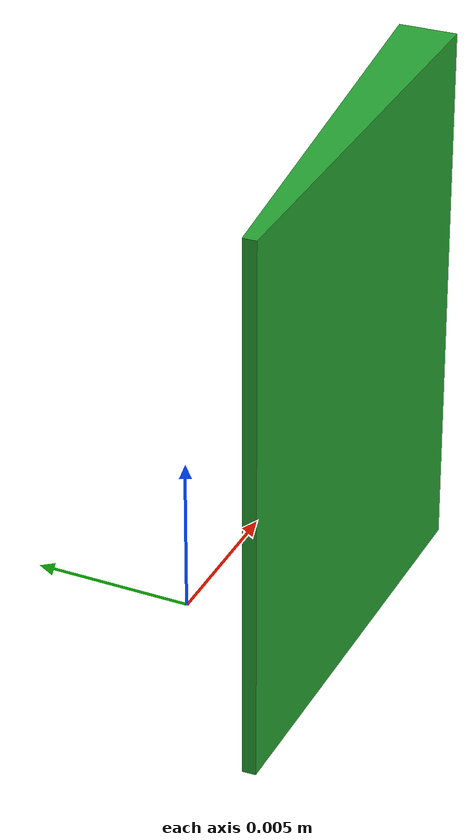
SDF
<?xml version="1.0"?>
<sdf version="1.6">
  <model name="gear_medium">
    <link name="link">
      <inertial>
        <mass>0.10</mass>
        <inertia>
          <ixx>1.4356194535e-05</ixx><ixy>0</ixy><ixz>0</ixz>
          <iyy>1.4356194535e-05</iyy><iyz>0</iyz><izz>2.2045722402e-05</izz>
        </inertia>
      </inertial>
      <!-- 64 convex sectors from Gear_Medium.STL in metres. The 5.3 mm entry
           chamfer is not the through bore; the narrowest CAD opening is retained. -->
      <collision name="collision">
        <pose>0 0 0 0 0 0</pose>
        <geometry><mesh><uri>model://gear_medium/meshes/Gear_Medium_collision_segment.stl</uri><scale>1 1 1</scale></mesh></geometry>
        <surface>
          <friction><ode><mu>0.5</mu><mu2>0.5</mu2></ode></friction>
          <contact><ode><kp>20000.0</kp><kd>8.0</kd><max_vel>0.05</max_vel><min_depth>0.0005</min_depth></ode></contact>
        </surface>
      </collision>
      <collision name="collision_01">
        <pose>0 0 0 0 0 0.09817477042468103</pose>
        <geometry><mesh><uri>model://gear_medium/meshes/Gear_Medium_collision_segment.stl</uri><scale>1 1 1</scale></mesh></geometry>
        <surface>
          <friction><ode><mu>0.5</mu><mu2>0.5</mu2></ode></friction>
          <contact><ode><kp>20000.0</kp><kd>8.0</kd><max_vel>0.05</max_vel><min_depth>0.0005</min_depth></ode></contact>
        </surface>
      </collision>
      <collision name="collision_02">
        <pose>0 0 0 0 0 0.1963495408493621</pose>
        <geometry><mesh><uri>model://gear_medium/meshes/Gear_Medium_collision_segment.stl</uri><scale>1 1 1</scale></mesh></geometry>
        <surface>
          <friction><ode><mu>0.5</mu><mu2>0.5</mu2></ode></friction>
          <contact><ode><kp>20000.0</kp><kd>8.0</kd><max_vel>0.05</max_vel><min_depth>0.0005</min_depth></ode></contact>
        </surface>
      </collision>
      <collision name="collision_03">
        <pose>0 0 0 0 0 0.2945243112740431</pose>
        <geometry><mesh><uri>model://gear_medium/meshes/Gear_Medium_collision_segment.stl</uri><scale>1 1 1</scale></mesh></geometry>
        <surface>
          <friction><ode><mu>0.5</mu><mu2>0.5</mu2></ode></friction>
          <contact><ode><kp>20000.0</kp><kd>8.0</kd><max_vel>0.05</max_vel><min_depth>0.0005</min_depth></ode></contact>
        </surface>
      </collision>
      <collision name="collision_04">
        <pose>0 0 0 0 0 0.3926990816987241</pose>
        <geometry><mesh><uri>model://gear_medium/meshes/Gear_Medium_collision_segment.stl</uri><scale>1 1 1</scale></mesh></geometry>
        <surface>
          <friction><ode><mu>0.5</mu><mu2>0.5</mu2></ode></friction>
          <contact><ode><kp>20000.0</kp><kd>8.0</kd><max_vel>0.05</max_vel><min_depth>0.0005</min_depth></ode></contact>
        </surface>
      </collision>
      <collision name="collision_05">
        <pose>0 0 0 0 0 0.4908738521234052</pose>
        <geometry><mesh><uri>model://gear_medium/meshes/Gear_Medium_collision_segment.stl</uri><scale>1 1 1</scale></mesh></geometry>
        <surface>
          <friction><ode><mu>0.5</mu><mu2>0.5</mu2></ode></friction>
          <contact><ode><kp>20000.0</kp><kd>8.0</kd><max_vel>0.05</max_vel><min_depth>0.0005</min_depth></ode></contact>
        </surface>
      </collision>
      <collision name="collision_06">
        <pose>0 0 0 0 0 0.5890486225480862</pose>
        <geometry><mesh><uri>model://gear_medium/meshes/Gear_Medium_collision_segment.stl</uri><scale>1 1 1</scale></mesh></geometry>
        <surface>
          <friction><ode><mu>0.5</mu><mu2>0.5</mu2></ode></friction>
          <contact><ode><kp>20000.0</kp><kd>8.0</kd><max_vel>0.05</max_vel><min_depth>0.0005</min_depth></ode></contact>
        </surface>
      </collision>
      <collision name="collision_07">
        <pose>0 0 0 0 0 0.6872233929727672</pose>
        <geometry><mesh><uri>model://gear_medium/meshes/Gear_Medium_collision_segment.stl</uri><scale>1 1 1</scale></mesh></geometry>
        <surface>
          <friction><ode><mu>0.5</mu><mu2>0.5</mu2></ode></friction>
          <contact><ode><kp>20000.0</kp><kd>8.0</kd><max_vel>0.05</max_vel><min_depth>0.0005</min_depth></ode></contact>
        </surface>
      </collision>
      <collision name="collision_08">
        <pose>0 0 0 0 0 0.7853981633974483</pose>
        <geometry><mesh><uri>model://gear_medium/meshes/Gear_Medium_collision_segment.stl</uri><scale>1 1 1</scale></mesh></geometry>
        <surface>
          <friction><ode><mu>0.5</mu><mu2>0.5</mu2></ode></friction>
          <contact><ode><kp>20000.0</kp><kd>8.0</kd><max_vel>0.05</max_vel><min_depth>0.0005</min_depth></ode></contact>
        </surface>
      </collision>
      <collision name="collision_09">
        <pose>0 0 0 0 0 0.8835729338221293</pose>
        <geometry><mesh><uri>model://gear_medium/meshes/Gear_Medium_collision_segment.stl</uri><scale>1 1 1</scale></mesh></geometry>
        <surface>
          <friction><ode><mu>0.5</mu><mu2>0.5</mu2></ode></friction>
          <contact><ode><kp>20000.0</kp><kd>8.0</kd><max_vel>0.05</max_vel><min_depth>0.0005</min_depth></ode></contact>
        </surface>
      </collision>
      <collision name="collision_10">
        <pose>0 0 0 0 0 0.9817477042468103</pose>
        <geometry><mesh><uri>model://gear_medium/meshes/Gear_Medium_collision_segment.stl</uri><scale>1 1 1</scale></mesh></geometry>
        <surface>
          <friction><ode><mu>0.5</mu><mu2>0.5</mu2></ode></friction>
          <contact><ode><kp>20000.0</kp><kd>8.0</kd><max_vel>0.05</max_vel><min_depth>0.0005</min_depth></ode></contact>
        </surface>
      </collision>
      <collision name="collision_11">
        <pose>0 0 0 0 0 1.079922474671491</pose>
        <geometry><mesh><uri>model://gear_medium/meshes/Gear_Medium_collision_segment.stl</uri><scale>1 1 1</scale></mesh></geometry>
        <surface>
          <friction><ode><mu>0.5</mu><mu2>0.5</mu2></ode></friction>
          <contact><ode><kp>20000.0</kp><kd>8.0</kd><max_vel>0.05</max_vel><min_depth>0.0005</min_depth></ode></contact>
        </surface>
      </collision>
      <collision name="collision_12">
        <pose>0 0 0 0 0 1.178097245096172</pose>
        <geometry><mesh><uri>model://gear_medium/meshes/Gear_Medium_collision_segment.stl</uri><scale>1 1 1</scale></mesh></geometry>
        <surface>
          <friction><ode><mu>0.5</mu><mu2>0.5</mu2></ode></friction>
          <contact><ode><kp>20000.0</kp><kd>8.0</kd><max_vel>0.05</max_vel><min_depth>0.0005</min_depth></ode></contact>
        </surface>
      </collision>
      <collision name="collision_13">
        <pose>0 0 0 0 0 1.276272015520854</pose>
        <geometry><mesh><uri>model://gear_medium/meshes/Gear_Medium_collision_segment.stl</uri><scale>1 1 1</scale></mesh></geometry>
        <surface>
          <friction><ode><mu>0.5</mu><mu2>0.5</mu2></ode></friction>
          <contact><ode><kp>20000.0</kp><kd>8.0</kd><max_vel>0.05</max_vel><min_depth>0.0005</min_depth></ode></contact>
        </surface>
      </collision>
      <collision name="collision_14">
        <pose>0 0 0 0 0 1.374446785945534</pose>
        <geometry><mesh><uri>model://gear_medium/meshes/Gear_Medium_collision_segment.stl</uri><scale>1 1 1</scale></mesh></geometry>
        <surface>
          <friction><ode><mu>0.5</mu><mu2>0.5</mu2></ode></friction>
          <contact><ode><kp>20000.0</kp><kd>8.0</kd><max_vel>0.05</max_vel><min_depth>0.0005</min_depth></ode></contact>
        </surface>
      </collision>
      <collision name="collision_15">
        <pose>0 0 0 0 0 1.472621556370215</pose>
        <geometry><mesh><uri>model://gear_medium/meshes/Gear_Medium_collision_segment.stl</uri><scale>1 1 1</scale></mesh></geometry>
        <surface>
          <friction><ode><mu>0.5</mu><mu2>0.5</mu2></ode></friction>
          <contact><ode><kp>20000.0</kp><kd>8.0</kd><max_vel>0.05</max_vel><min_depth>0.0005</min_depth></ode></contact>
        </surface>
      </collision>
      <collision name="collision_16">
        <pose>0 0 0 0 0 1.570796326794897</pose>
        <geometry><mesh><uri>model://gear_medium/meshes/Gear_Medium_collision_segment.stl</uri><scale>1 1 1</scale></mesh></geometry>
        <surface>
          <friction><ode><mu>0.5</mu><mu2>0.5</mu2></ode></friction>
          <contact><ode><kp>20000.0</kp><kd>8.0</kd><max_vel>0.05</max_vel><min_depth>0.0005</min_depth></ode></contact>
        </surface>
      </collision>
      <collision name="collision_17">
        <pose>0 0 0 0 0 1.668971097219578</pose>
        <geometry><mesh><uri>model://gear_medium/meshes/Gear_Medium_collision_segment.stl</uri><scale>1 1 1</scale></mesh></geometry>
        <surface>
          <friction><ode><mu>0.5</mu><mu2>0.5</mu2></ode></friction>
          <contact><ode><kp>20000.0</kp><kd>8.0</kd><max_vel>0.05</max_vel><min_depth>0.0005</min_depth></ode></contact>
        </surface>
      </collision>
      <collision name="collision_18">
        <pose>0 0 0 0 0 1.767145867644259</pose>
        <geometry><mesh><uri>model://gear_medium/meshes/Gear_Medium_collision_segment.stl</uri><scale>1 1 1</scale></mesh></geometry>
        <surface>
          <friction><ode><mu>0.5</mu><mu2>0.5</mu2></ode></friction>
          <contact><ode><kp>20000.0</kp><kd>8.0</kd><max_vel>0.05</max_vel><min_depth>0.0005</min_depth></ode></contact>
        </surface>
      </collision>
      <collision name="collision_19">
        <pose>0 0 0 0 0 1.86532063806894</pose>
        <geometry><mesh><uri>model://gear_medium/meshes/Gear_Medium_collision_segment.stl</uri><scale>1 1 1</scale></mesh></geometry>
        <surface>
          <friction><ode><mu>0.5</mu><mu2>0.5</mu2></ode></friction>
          <contact><ode><kp>20000.0</kp><kd>8.0</kd><max_vel>0.05</max_vel><min_depth>0.0005</min_depth></ode></contact>
        </surface>
      </collision>
      <collision name="collision_20">
        <pose>0 0 0 0 0 1.963495408493621</pose>
        <geometry><mesh><uri>model://gear_medium/meshes/Gear_Medium_collision_segment.stl</uri><scale>1 1 1</scale></mesh></geometry>
        <surface>
          <friction><ode><mu>0.5</mu><mu2>0.5</mu2></ode></friction>
          <contact><ode><kp>20000.0</kp><kd>8.0</kd><max_vel>0.05</max_vel><min_depth>0.0005</min_depth></ode></contact>
        </surface>
      </collision>
      <collision name="collision_21">
        <pose>0 0 0 0 0 2.061670178918302</pose>
        <geometry><mesh><uri>model://gear_medium/meshes/Gear_Medium_collision_segment.stl</uri><scale>1 1 1</scale></mesh></geometry>
        <surface>
          <friction><ode><mu>0.5</mu><mu2>0.5</mu2></ode></friction>
          <contact><ode><kp>20000.0</kp><kd>8.0</kd><max_vel>0.05</max_vel><min_depth>0.0005</min_depth></ode></contact>
        </surface>
      </collision>
      <collision name="collision_22">
        <pose>0 0 0 0 0 2.159844949342983</pose>
        <geometry><mesh><uri>model://gear_medium/meshes/Gear_Medium_collision_segment.stl</uri><scale>1 1 1</scale></mesh></geometry>
        <surface>
          <friction><ode><mu>0.5</mu><mu2>0.5</mu2></ode></friction>
          <contact><ode><kp>20000.0</kp><kd>8.0</kd><max_vel>0.05</max_vel><min_depth>0.0005</min_depth></ode></contact>
        </surface>
      </collision>
      <collision name="collision_23">
        <pose>0 0 0 0 0 2.258019719767664</pose>
        <geometry><mesh><uri>model://gear_medium/meshes/Gear_Medium_collision_segment.stl</uri><scale>1 1 1</scale></mesh></geometry>
        <surface>
          <friction><ode><mu>0.5</mu><mu2>0.5</mu2></ode></friction>
          <contact><ode><kp>20000.0</kp><kd>8.0</kd><max_vel>0.05</max_vel><min_depth>0.0005</min_depth></ode></contact>
        </surface>
      </collision>
      <collision name="collision_24">
        <pose>0 0 0 0 0 2.356194490192345</pose>
        <geometry><mesh><uri>model://gear_medium/meshes/Gear_Medium_collision_segment.stl</uri><scale>1 1 1</scale></mesh></geometry>
        <surface>
          <friction><ode><mu>0.5</mu><mu2>0.5</mu2></ode></friction>
          <contact><ode><kp>20000.0</kp><kd>8.0</kd><max_vel>0.05</max_vel><min_depth>0.0005</min_depth></ode></contact>
        </surface>
      </collision>
      <collision name="collision_25">
        <pose>0 0 0 0 0 2.454369260617026</pose>
        <geometry><mesh><uri>model://gear_medium/meshes/Gear_Medium_collision_segment.stl</uri><scale>1 1 1</scale></mesh></geometry>
        <surface>
          <friction><ode><mu>0.5</mu><mu2>0.5</mu2></ode></friction>
          <contact><ode><kp>20000.0</kp><kd>8.0</kd><max_vel>0.05</max_vel><min_depth>0.0005</min_depth></ode></contact>
        </surface>
      </collision>
      <collision name="collision_26">
        <pose>0 0 0 0 0 2.552544031041707</pose>
        <geometry><mesh><uri>model://gear_medium/meshes/Gear_Medium_collision_segment.stl</uri><scale>1 1 1</scale></mesh></geometry>
        <surface>
          <friction><ode><mu>0.5</mu><mu2>0.5</mu2></ode></friction>
          <contact><ode><kp>20000.0</kp><kd>8.0</kd><max_vel>0.05</max_vel><min_depth>0.0005</min_depth></ode></contact>
        </surface>
      </collision>
      <collision name="collision_27">
        <pose>0 0 0 0 0 2.650718801466388</pose>
        <geometry><mesh><uri>model://gear_medium/meshes/Gear_Medium_collision_segment.stl</uri><scale>1 1 1</scale></mesh></geometry>
        <surface>
          <friction><ode><mu>0.5</mu><mu2>0.5</mu2></ode></friction>
          <contact><ode><kp>20000.0</kp><kd>8.0</kd><max_vel>0.05</max_vel><min_depth>0.0005</min_depth></ode></contact>
        </surface>
      </collision>
      <collision name="collision_28">
        <pose>0 0 0 0 0 2.748893571891069</pose>
        <geometry><mesh><uri>model://gear_medium/meshes/Gear_Medium_collision_segment.stl</uri><scale>1 1 1</scale></mesh></geometry>
        <surface>
          <friction><ode><mu>0.5</mu><mu2>0.5</mu2></ode></friction>
          <contact><ode><kp>20000.0</kp><kd>8.0</kd><max_vel>0.05</max_vel><min_depth>0.0005</min_depth></ode></contact>
        </surface>
      </collision>
      <collision name="collision_29">
        <pose>0 0 0 0 0 2.84706834231575</pose>
        <geometry><mesh><uri>model://gear_medium/meshes/Gear_Medium_collision_segment.stl</uri><scale>1 1 1</scale></mesh></geometry>
        <surface>
          <friction><ode><mu>0.5</mu><mu2>0.5</mu2></ode></friction>
          <contact><ode><kp>20000.0</kp><kd>8.0</kd><max_vel>0.05</max_vel><min_depth>0.0005</min_depth></ode></contact>
        </surface>
      </collision>
      <collision name="collision_30">
        <pose>0 0 0 0 0 2.945243112740431</pose>
        <geometry><mesh><uri>model://gear_medium/meshes/Gear_Medium_collision_segment.stl</uri><scale>1 1 1</scale></mesh></geometry>
        <surface>
          <friction><ode><mu>0.5</mu><mu2>0.5</mu2></ode></friction>
          <contact><ode><kp>20000.0</kp><kd>8.0</kd><max_vel>0.05</max_vel><min_depth>0.0005</min_depth></ode></contact>
        </surface>
      </collision>
      <collision name="collision_31">
        <pose>0 0 0 0 0 3.043417883165112</pose>
        <geometry><mesh><uri>model://gear_medium/meshes/Gear_Medium_collision_segment.stl</uri><scale>1 1 1</scale></mesh></geometry>
        <surface>
          <friction><ode><mu>0.5</mu><mu2>0.5</mu2></ode></friction>
          <contact><ode><kp>20000.0</kp><kd>8.0</kd><max_vel>0.05</max_vel><min_depth>0.0005</min_depth></ode></contact>
        </surface>
      </collision>
      <collision name="collision_32">
        <pose>0 0 0 0 0 3.141592653589793</pose>
        <geometry><mesh><uri>model://gear_medium/meshes/Gear_Medium_collision_segment.stl</uri><scale>1 1 1</scale></mesh></geometry>
        <surface>
          <friction><ode><mu>0.5</mu><mu2>0.5</mu2></ode></friction>
          <contact><ode><kp>20000.0</kp><kd>8.0</kd><max_vel>0.05</max_vel><min_depth>0.0005</min_depth></ode></contact>
        </surface>
      </collision>
      <collision name="collision_33">
        <pose>0 0 0 0 0 3.239767424014474</pose>
        <geometry><mesh><uri>model://gear_medium/meshes/Gear_Medium_collision_segment.stl</uri><scale>1 1 1</scale></mesh></geometry>
        <surface>
          <friction><ode><mu>0.5</mu><mu2>0.5</mu2></ode></friction>
          <contact><ode><kp>20000.0</kp><kd>8.0</kd><max_vel>0.05</max_vel><min_depth>0.0005</min_depth></ode></contact>
        </surface>
      </collision>
      <collision name="collision_34">
        <pose>0 0 0 0 0 3.337942194439155</pose>
        <geometry><mesh><uri>model://gear_medium/meshes/Gear_Medium_collision_segment.stl</uri><scale>1 1 1</scale></mesh></geometry>
        <surface>
          <friction><ode><mu>0.5</mu><mu2>0.5</mu2></ode></friction>
          <contact><ode><kp>20000.0</kp><kd>8.0</kd><max_vel>0.05</max_vel><min_depth>0.0005</min_depth></ode></contact>
        </surface>
      </collision>
      <collision name="collision_35">
        <pose>0 0 0 0 0 3.436116964863836</pose>
        <geometry><mesh><uri>model://gear_medium/meshes/Gear_Medium_collision_segment.stl</uri><scale>1 1 1</scale></mesh></geometry>
        <surface>
          <friction><ode><mu>0.5</mu><mu2>0.5</mu2></ode></friction>
          <contact><ode><kp>20000.0</kp><kd>8.0</kd><max_vel>0.05</max_vel><min_depth>0.0005</min_depth></ode></contact>
        </surface>
      </collision>
      <collision name="collision_36">
        <pose>0 0 0 0 0 3.534291735288517</pose>
        <geometry><mesh><uri>model://gear_medium/meshes/Gear_Medium_collision_segment.stl</uri><scale>1 1 1</scale></mesh></geometry>
        <surface>
          <friction><ode><mu>0.5</mu><mu2>0.5</mu2></ode></friction>
          <contact><ode><kp>20000.0</kp><kd>8.0</kd><max_vel>0.05</max_vel><min_depth>0.0005</min_depth></ode></contact>
        </surface>
      </collision>
      <collision name="collision_37">
        <pose>0 0 0 0 0 3.632466505713198</pose>
        <geometry><mesh><uri>model://gear_medium/meshes/Gear_Medium_collision_segment.stl</uri><scale>1 1 1</scale></mesh></geometry>
        <surface>
          <friction><ode><mu>0.5</mu><mu2>0.5</mu2></ode></friction>
          <contact><ode><kp>20000.0</kp><kd>8.0</kd><max_vel>0.05</max_vel><min_depth>0.0005</min_depth></ode></contact>
        </surface>
      </collision>
      <collision name="collision_38">
        <pose>0 0 0 0 0 3.730641276137879</pose>
        <geometry><mesh><uri>model://gear_medium/meshes/Gear_Medium_collision_segment.stl</uri><scale>1 1 1</scale></mesh></geometry>
        <surface>
          <friction><ode><mu>0.5</mu><mu2>0.5</mu2></ode></friction>
          <contact><ode><kp>20000.0</kp><kd>8.0</kd><max_vel>0.05</max_vel><min_depth>0.0005</min_depth></ode></contact>
        </surface>
      </collision>
      <collision name="collision_39">
        <pose>0 0 0 0 0 3.82881604656256</pose>
        <geometry><mesh><uri>model://gear_medium/meshes/Gear_Medium_collision_segment.stl</uri><scale>1 1 1</scale></mesh></geometry>
        <surface>
          <friction><ode><mu>0.5</mu><mu2>0.5</mu2></ode></friction>
          <contact><ode><kp>20000.0</kp><kd>8.0</kd><max_vel>0.05</max_vel><min_depth>0.0005</min_depth></ode></contact>
        </surface>
      </collision>
      <collision name="collision_40">
        <pose>0 0 0 0 0 3.926990816987241</pose>
        <geometry><mesh><uri>model://gear_medium/meshes/Gear_Medium_collision_segment.stl</uri><scale>1 1 1</scale></mesh></geometry>
        <surface>
          <friction><ode><mu>0.5</mu><mu2>0.5</mu2></ode></friction>
          <contact><ode><kp>20000.0</kp><kd>8.0</kd><max_vel>0.05</max_vel><min_depth>0.0005</min_depth></ode></contact>
        </surface>
      </collision>
      <collision name="collision_41">
        <pose>0 0 0 0 0 4.025165587411922</pose>
        <geometry><mesh><uri>model://gear_medium/meshes/Gear_Medium_collision_segment.stl</uri><scale>1 1 1</scale></mesh></geometry>
        <surface>
          <friction><ode><mu>0.5</mu><mu2>0.5</mu2></ode></friction>
          <contact><ode><kp>20000.0</kp><kd>8.0</kd><max_vel>0.05</max_vel><min_depth>0.0005</min_depth></ode></contact>
        </surface>
      </collision>
      <collision name="collision_42">
        <pose>0 0 0 0 0 4.123340357836604</pose>
        <geometry><mesh><uri>model://gear_medium/meshes/Gear_Medium_collision_segment.stl</uri><scale>1 1 1</scale></mesh></geometry>
        <surface>
          <friction><ode><mu>0.5</mu><mu2>0.5</mu2></ode></friction>
          <contact><ode><kp>20000.0</kp><kd>8.0</kd><max_vel>0.05</max_vel><min_depth>0.0005</min_depth></ode></contact>
        </surface>
      </collision>
      <collision name="collision_43">
        <pose>0 0 0 0 0 4.221515128261284</pose>
        <geometry><mesh><uri>model://gear_medium/meshes/Gear_Medium_collision_segment.stl</uri><scale>1 1 1</scale></mesh></geometry>
        <surface>
          <friction><ode><mu>0.5</mu><mu2>0.5</mu2></ode></friction>
          <contact><ode><kp>20000.0</kp><kd>8.0</kd><max_vel>0.05</max_vel><min_depth>0.0005</min_depth></ode></contact>
        </surface>
      </collision>
      <collision name="collision_44">
        <pose>0 0 0 0 0 4.319689898685965</pose>
        <geometry><mesh><uri>model://gear_medium/meshes/Gear_Medium_collision_segment.stl</uri><scale>1 1 1</scale></mesh></geometry>
        <surface>
          <friction><ode><mu>0.5</mu><mu2>0.5</mu2></ode></friction>
          <contact><ode><kp>20000.0</kp><kd>8.0</kd><max_vel>0.05</max_vel><min_depth>0.0005</min_depth></ode></contact>
        </surface>
      </collision>
      <collision name="collision_45">
        <pose>0 0 0 0 0 4.417864669110647</pose>
        <geometry><mesh><uri>model://gear_medium/meshes/Gear_Medium_collision_segment.stl</uri><scale>1 1 1</scale></mesh></geometry>
        <surface>
          <friction><ode><mu>0.5</mu><mu2>0.5</mu2></ode></friction>
          <contact><ode><kp>20000.0</kp><kd>8.0</kd><max_vel>0.05</max_vel><min_depth>0.0005</min_depth></ode></contact>
        </surface>
      </collision>
      <collision name="collision_46">
        <pose>0 0 0 0 0 4.516039439535327</pose>
        <geometry><mesh><uri>model://gear_medium/meshes/Gear_Medium_collision_segment.stl</uri><scale>1 1 1</scale></mesh></geometry>
        <surface>
          <friction><ode><mu>0.5</mu><mu2>0.5</mu2></ode></friction>
          <contact><ode><kp>20000.0</kp><kd>8.0</kd><max_vel>0.05</max_vel><min_depth>0.0005</min_depth></ode></contact>
        </surface>
      </collision>
      <collision name="collision_47">
        <pose>0 0 0 0 0 4.614214209960009</pose>
        <geometry><mesh><uri>model://gear_medium/meshes/Gear_Medium_collision_segment.stl</uri><scale>1 1 1</scale></mesh></geometry>
        <surface>
          <friction><ode><mu>0.5</mu><mu2>0.5</mu2></ode></friction>
          <contact><ode><kp>20000.0</kp><kd>8.0</kd><max_vel>0.05</max_vel><min_depth>0.0005</min_depth></ode></contact>
        </surface>
      </collision>
      <collision name="collision_48">
        <pose>0 0 0 0 0 4.71238898038469</pose>
        <geometry><mesh><uri>model://gear_medium/meshes/Gear_Medium_collision_segment.stl</uri><scale>1 1 1</scale></mesh></geometry>
        <surface>
          <friction><ode><mu>0.5</mu><mu2>0.5</mu2></ode></friction>
          <contact><ode><kp>20000.0</kp><kd>8.0</kd><max_vel>0.05</max_vel><min_depth>0.0005</min_depth></ode></contact>
        </surface>
      </collision>
      <collision name="collision_49">
        <pose>0 0 0 0 0 4.81056375080937</pose>
        <geometry><mesh><uri>model://gear_medium/meshes/Gear_Medium_collision_segment.stl</uri><scale>1 1 1</scale></mesh></geometry>
        <surface>
          <friction><ode><mu>0.5</mu><mu2>0.5</mu2></ode></friction>
          <contact><ode><kp>20000.0</kp><kd>8.0</kd><max_vel>0.05</max_vel><min_depth>0.0005</min_depth></ode></contact>
        </surface>
      </collision>
      <collision name="collision_50">
        <pose>0 0 0 0 0 4.908738521234052</pose>
        <geometry><mesh><uri>model://gear_medium/meshes/Gear_Medium_collision_segment.stl</uri><scale>1 1 1</scale></mesh></geometry>
        <surface>
          <friction><ode><mu>0.5</mu><mu2>0.5</mu2></ode></friction>
          <contact><ode><kp>20000.0</kp><kd>8.0</kd><max_vel>0.05</max_vel><min_depth>0.0005</min_depth></ode></contact>
        </surface>
      </collision>
      <collision name="collision_51">
        <pose>0 0 0 0 0 5.006913291658733</pose>
        <geometry><mesh><uri>model://gear_medium/meshes/Gear_Medium_collision_segment.stl</uri><scale>1 1 1</scale></mesh></geometry>
        <surface>
          <friction><ode><mu>0.5</mu><mu2>0.5</mu2></ode></friction>
          <contact><ode><kp>20000.0</kp><kd>8.0</kd><max_vel>0.05</max_vel><min_depth>0.0005</min_depth></ode></contact>
        </surface>
      </collision>
      <collision name="collision_52">
        <pose>0 0 0 0 0 5.105088062083414</pose>
        <geometry><mesh><uri>model://gear_medium/meshes/Gear_Medium_collision_segment.stl</uri><scale>1 1 1</scale></mesh></geometry>
        <surface>
          <friction><ode><mu>0.5</mu><mu2>0.5</mu2></ode></friction>
          <contact><ode><kp>20000.0</kp><kd>8.0</kd><max_vel>0.05</max_vel><min_depth>0.0005</min_depth></ode></contact>
        </surface>
      </collision>
      <collision name="collision_53">
        <pose>0 0 0 0 0 5.203262832508095</pose>
        <geometry><mesh><uri>model://gear_medium/meshes/Gear_Medium_collision_segment.stl</uri><scale>1 1 1</scale></mesh></geometry>
        <surface>
          <friction><ode><mu>0.5</mu><mu2>0.5</mu2></ode></friction>
          <contact><ode><kp>20000.0</kp><kd>8.0</kd><max_vel>0.05</max_vel><min_depth>0.0005</min_depth></ode></contact>
        </surface>
      </collision>
      <collision name="collision_54">
        <pose>0 0 0 0 0 5.301437602932776</pose>
        <geometry><mesh><uri>model://gear_medium/meshes/Gear_Medium_collision_segment.stl</uri><scale>1 1 1</scale></mesh></geometry>
        <surface>
          <friction><ode><mu>0.5</mu><mu2>0.5</mu2></ode></friction>
          <contact><ode><kp>20000.0</kp><kd>8.0</kd><max_vel>0.05</max_vel><min_depth>0.0005</min_depth></ode></contact>
        </surface>
      </collision>
      <collision name="collision_55">
        <pose>0 0 0 0 0 5.399612373357457</pose>
        <geometry><mesh><uri>model://gear_medium/meshes/Gear_Medium_collision_segment.stl</uri><scale>1 1 1</scale></mesh></geometry>
        <surface>
          <friction><ode><mu>0.5</mu><mu2>0.5</mu2></ode></friction>
          <contact><ode><kp>20000.0</kp><kd>8.0</kd><max_vel>0.05</max_vel><min_depth>0.0005</min_depth></ode></contact>
        </surface>
      </collision>
      <collision name="collision_56">
        <pose>0 0 0 0 0 5.497787143782138</pose>
        <geometry><mesh><uri>model://gear_medium/meshes/Gear_Medium_collision_segment.stl</uri><scale>1 1 1</scale></mesh></geometry>
        <surface>
          <friction><ode><mu>0.5</mu><mu2>0.5</mu2></ode></friction>
          <contact><ode><kp>20000.0</kp><kd>8.0</kd><max_vel>0.05</max_vel><min_depth>0.0005</min_depth></ode></contact>
        </surface>
      </collision>
      <collision name="collision_57">
        <pose>0 0 0 0 0 5.595961914206819</pose>
        <geometry><mesh><uri>model://gear_medium/meshes/Gear_Medium_collision_segment.stl</uri><scale>1 1 1</scale></mesh></geometry>
        <surface>
          <friction><ode><mu>0.5</mu><mu2>0.5</mu2></ode></friction>
          <contact><ode><kp>20000.0</kp><kd>8.0</kd><max_vel>0.05</max_vel><min_depth>0.0005</min_depth></ode></contact>
        </surface>
      </collision>
      <collision name="collision_58">
        <pose>0 0 0 0 0 5.6941366846315</pose>
        <geometry><mesh><uri>model://gear_medium/meshes/Gear_Medium_collision_segment.stl</uri><scale>1 1 1</scale></mesh></geometry>
        <surface>
          <friction><ode><mu>0.5</mu><mu2>0.5</mu2></ode></friction>
          <contact><ode><kp>20000.0</kp><kd>8.0</kd><max_vel>0.05</max_vel><min_depth>0.0005</min_depth></ode></contact>
        </surface>
      </collision>
      <collision name="collision_59">
        <pose>0 0 0 0 0 5.792311455056181</pose>
        <geometry><mesh><uri>model://gear_medium/meshes/Gear_Medium_collision_segment.stl</uri><scale>1 1 1</scale></mesh></geometry>
        <surface>
          <friction><ode><mu>0.5</mu><mu2>0.5</mu2></ode></friction>
          <contact><ode><kp>20000.0</kp><kd>8.0</kd><max_vel>0.05</max_vel><min_depth>0.0005</min_depth></ode></contact>
        </surface>
      </collision>
      <collision name="collision_60">
        <pose>0 0 0 0 0 5.890486225480862</pose>
        <geometry><mesh><uri>model://gear_medium/meshes/Gear_Medium_collision_segment.stl</uri><scale>1 1 1</scale></mesh></geometry>
        <surface>
          <friction><ode><mu>0.5</mu><mu2>0.5</mu2></ode></friction>
          <contact><ode><kp>20000.0</kp><kd>8.0</kd><max_vel>0.05</max_vel><min_depth>0.0005</min_depth></ode></contact>
        </surface>
      </collision>
      <collision name="collision_61">
        <pose>0 0 0 0 0 5.988660995905543</pose>
        <geometry><mesh><uri>model://gear_medium/meshes/Gear_Medium_collision_segment.stl</uri><scale>1 1 1</scale></mesh></geometry>
        <surface>
          <friction><ode><mu>0.5</mu><mu2>0.5</mu2></ode></friction>
          <contact><ode><kp>20000.0</kp><kd>8.0</kd><max_vel>0.05</max_vel><min_depth>0.0005</min_depth></ode></contact>
        </surface>
      </collision>
      <collision name="collision_62">
        <pose>0 0 0 0 0 6.086835766330224</pose>
        <geometry><mesh><uri>model://gear_medium/meshes/Gear_Medium_collision_segment.stl</uri><scale>1 1 1</scale></mesh></geometry>
        <surface>
          <friction><ode><mu>0.5</mu><mu2>0.5</mu2></ode></friction>
          <contact><ode><kp>20000.0</kp><kd>8.0</kd><max_vel>0.05</max_vel><min_depth>0.0005</min_depth></ode></contact>
        </surface>
      </collision>
      <collision name="collision_63">
        <pose>0 0 0 0 0 6.185010536754906</pose>
        <geometry><mesh><uri>model://gear_medium/meshes/Gear_Medium_collision_segment.stl</uri><scale>1 1 1</scale></mesh></geometry>
        <surface>
          <friction><ode><mu>0.5</mu><mu2>0.5</mu2></ode></friction>
          <contact><ode><kp>20000.0</kp><kd>8.0</kd><max_vel>0.05</max_vel><min_depth>0.0005</min_depth></ode></contact>
        </surface>
      </collision>
      <visual name="visual">
        <pose>-0.21316049955 0.18188829805 0.0697159157 3.141592653589793 0 0</pose>
        <geometry>
          <mesh>
            <uri>model://gear_medium/meshes/Gear_Medium.STL</uri>
            <scale>0.001 0.001 0.001</scale>
          </mesh>
        </geometry>
        <material><script><uri>file://media/materials/scripts/gazebo.material</uri><name>Gazebo/Green</name></script></material>
      </visual>
    </link>
  </model>
</sdf>
